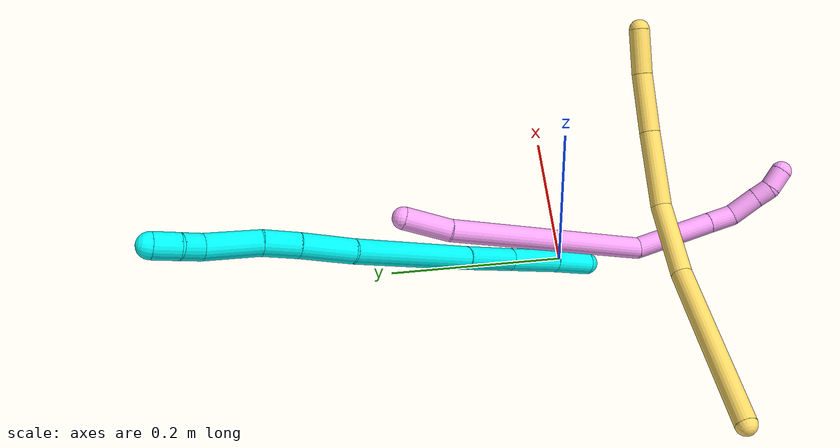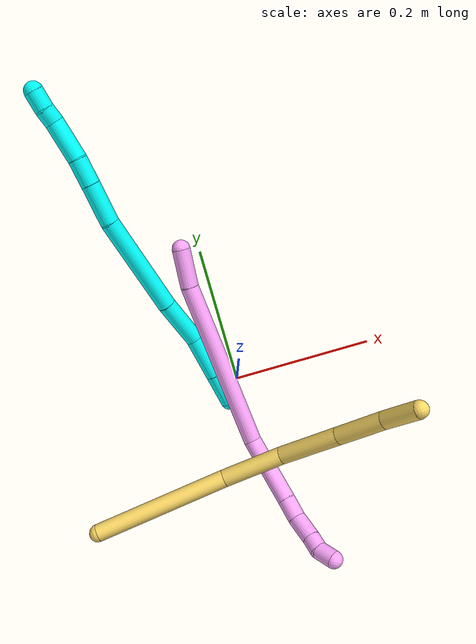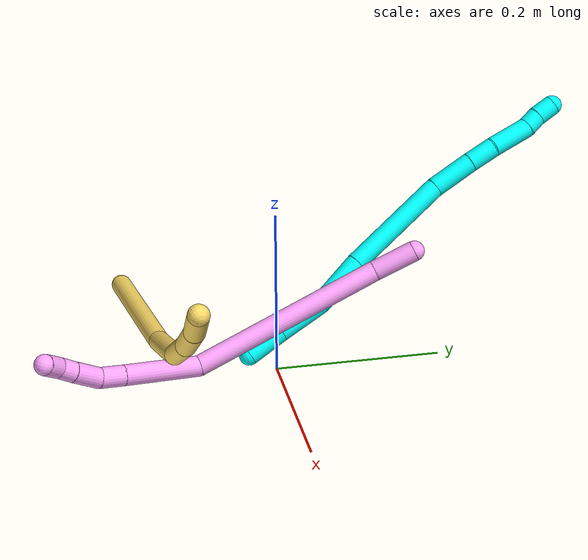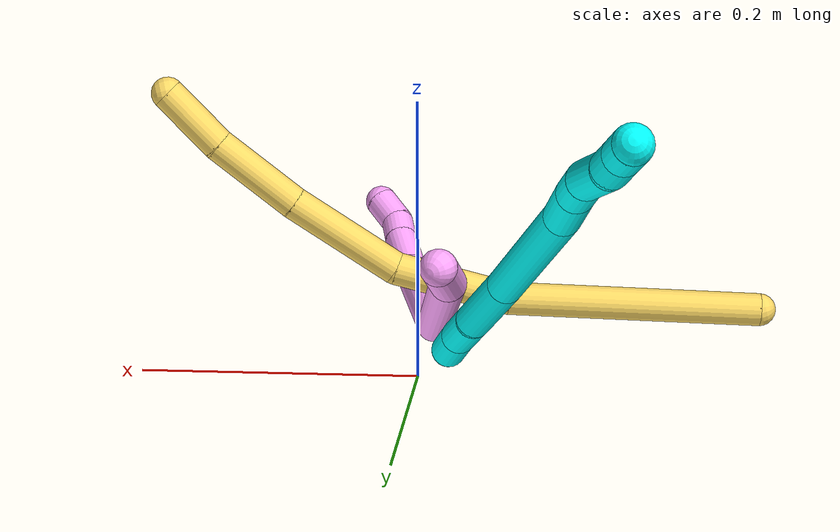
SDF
<sdf version="1.7">
 <world name="default">
  <model name="photoneo_s_sensor">
   <static>1</static>
   <pose>0 0 2 1.57079 1.57079 3.14159</pose>
   <link name="link">
    <inertial><mass>0.1</mass></inertial>
    <sensor name="sensor" type="depth">
     <update_rate>30</update_rate>
     <camera>
      <horizontal_fov>1.22</horizontal_fov>
      <image><width>1920</width><height>1200</height><format>B8G8R8</format></image>
      <clip><near>0.1</near><far>4</far></clip>
      <depth_camera><output>points</output></depth_camera>
     </camera>
     <plugin name="camera_plugin" filename="libgazebo_ros_depth_camera.so">
      <baseline>0.2</baseline>
      <alwaysOn>1</alwaysOn>
      <updateRate>0.0</updateRate>
      <cameraName>camera_ir</cameraName>
      <imageTopicName>/camera/color/image_raw</imageTopicName>
      <cameraInfoTopicName>/camera/color/camera_info</cameraInfoTopicName>
      <depthImageTopicName>/camera/depth/image_raw</depthImageTopicName>
      <depthImageCameraInfoTopicName>/camera/depth/camera_info</depthImageCameraInfoTopicName>
      <pointCloudTopicName>/camera/depth/points</pointCloudTopicName>
      <frameName>fr_optical</frameName>
      <pointCloudCutoff>0.1</pointCloudCutoff>
      <pointCloudCutoffMax>2.0</pointCloudCutoffMax>
      <distortionK1>0</distortionK1>
      <distortionK2>0</distortionK2>
      <distortionK3>0</distortionK3>
      <distortionT1>0</distortionT1>
      <distortionT2>0</distortionT2>
      <CxPrime>0</CxPrime>
      <Cx>0</Cx>
      <Cy>0</Cy>
      <focalLength>0</focalLength>
      <hackBaseline>0</hackBaseline>
     </plugin>
    </sensor>
   </link>
  </model>
  <model name="bin">
   <static>1</static>
   <link name="bottom">
    <collision name="collision-bottom">
     <pose>0 0 -0.01 0 -0 0</pose>
     <geometry><box><size>0.8 0.6 0.02</size></box></geometry>
     <surface>
      <friction><ode><mu>100</mu><mu2>100</mu2></ode></friction>
      <contact><collide_bitmask>65535</collide_bitmask></contact>
     </surface>
    </collision>
   </link>
   <link name="west_wall">
    <collision name="collision-west_wall">
     <pose>-0.41 0 0.1 0 -0 0</pose>
     <geometry><box><size>0.02 0.6 0.2</size></box></geometry>
     <surface>
      <friction><ode><mu>100</mu><mu2>100</mu2></ode></friction>
      <contact><collide_bitmask>65535</collide_bitmask></contact>
     </surface>
    </collision>
   </link>
   <link name="east_wall">
    <collision name="collision-east_wall">
     <pose>0.41 0 0.1 0 -0 0</pose>
     <geometry><box><size>0.02 0.6 0.2</size></box></geometry>
     <surface>
      <friction><ode><mu>100</mu><mu2>100</mu2></ode></friction>
      <contact><collide_bitmask>65535</collide_bitmask></contact>
     </surface>
    </collision>
   </link>
   <link name="south_wall">
    <collision name="collision-south_wall">
     <pose>0 -0.31 0.1 0 -0 0</pose>
     <geometry><box><size>0.8 0.02 0.2</size></box></geometry>
     <surface>
      <friction><ode><mu>100</mu><mu2>100</mu2></ode></friction>
      <contact><collide_bitmask>65535</collide_bitmask></contact>
     </surface>
    </collision>
   </link>
   <link name="north_wall">
    <collision name="collision-north_wall">
     <pose>0 0.31 0.1 0 -0 0</pose>
     <geometry><box><size>0.8 0.02 0.2</size></box></geometry>
     <surface>
      <friction><ode><mu>100</mu><mu2>100</mu2></ode></friction>
      <contact><collide_bitmask>65535</collide_bitmask></contact>
     </surface>
    </collision>
   </link>
  </model>
  <model name="3">
   <static>0</static>
   <link name="3">
    <collision name="collision-cylinder-e_1_1_4">
     <pose>-0.000596 0.003073 0.023415 -0.130496 -0.025215 0.001648</pose>
     <geometry><cylinder><radius>0.0125</radius><length>0.047246</length></cylinder></geometry>
     <surface>
      <friction><ode><mu>1.16</mu><mu2>1.16</mu2><slip1>0</slip1><slip2>0</slip2></ode></friction>
      <contact><ode><kp>1e+06</kp><kd>1</kd><max_vel>0</max_vel><min_depth>0.001</min_depth></ode></contact>
     </surface>
    </collision>
    <visual name="visual-cylinder-e_1_1_4">
     <pose>-0.000596 0.003073 0.023415 -0.130496 -0.025215 0.001648</pose>
     <geometry><cylinder><radius>0.0125</radius><length>0.047246</length></cylinder></geometry>
     <material><ambient>0.003922 1 0.996078 1</ambient></material>
    </visual>
    <collision name="collision-cylinder-e_2_4_5">
     <pose>-0.000746 0.009851 0.07711 -0.121752 0.014596 -0.00089</pose>
     <geometry><cylinder><radius>0.0125</radius><length>0.06102</length></cylinder></geometry>
     <surface>
      <friction><ode><mu>1.16</mu><mu2>1.16</mu2><slip1>0</slip1><slip2>0</slip2></ode></friction>
      <contact><ode><kp>1e+06</kp><kd>1</kd><max_vel>0</max_vel><min_depth>0.001</min_depth></ode></contact>
     </surface>
    </collision>
    <visual name="visual-cylinder-e_2_4_5">
     <pose>-0.000746 0.009851 0.07711 -0.121752 0.014596 -0.00089</pose>
     <geometry><cylinder><radius>0.0125</radius><length>0.06102</length></cylinder></geometry>
     <material><ambient>0.003922 1 0.996078 1</ambient></material>
    </visual>
    <collision name="collision-cylinder-e_3_5_6">
     <pose>-0.003994 0.024236 0.138868 -0.327096 -0.110652 0.018278</pose>
     <geometry><cylinder><radius>0.0125</radius><length>0.066889</length></cylinder></geometry>
     <surface>
      <friction><ode><mu>1.16</mu><mu2>1.16</mu2><slip1>0</slip1><slip2>0</slip2></ode></friction>
      <contact><ode><kp>1e+06</kp><kd>1</kd><max_vel>0</max_vel><min_depth>0.001</min_depth></ode></contact>
     </surface>
    </collision>
    <visual name="visual-cylinder-e_3_5_6">
     <pose>-0.003994 0.024236 0.138868 -0.327096 -0.110652 0.018278</pose>
     <geometry><cylinder><radius>0.0125</radius><length>0.066889</length></cylinder></geometry>
     <material><ambient>0.003922 1 0.996078 1</ambient></material>
    </visual>
    <collision name="collision-cylinder-e_4_6_7">
     <pose>-0.013207 0.051167 0.236986 -0.239192 -0.0803 0.009655</pose>
     <geometry><cylinder><radius>0.0125</radius><length>0.13763</length></cylinder></geometry>
     <surface>
      <friction><ode><mu>1.16</mu><mu2>1.16</mu2><slip1>0</slip1><slip2>0</slip2></ode></friction>
      <contact><ode><kp>1e+06</kp><kd>1</kd><max_vel>0</max_vel><min_depth>0.001</min_depth></ode></contact>
     </surface>
    </collision>
    <visual name="visual-cylinder-e_4_6_7">
     <pose>-0.013207 0.051167 0.236986 -0.239192 -0.0803 0.009655</pose>
     <geometry><cylinder><radius>0.0125</radius><length>0.13763</length></cylinder></geometry>
     <material><ambient>0.003922 1 0.996078 1</ambient></material>
    </visual>
    <collision name="collision-cylinder-e_5_7_8">
     <pose>-0.019777 0.069706 0.330764 -0.084118 -0.038562 0.001623</pose>
     <geometry><cylinder><radius>0.0125</radius><length>0.054508</length></cylinder></geometry>
     <surface>
      <friction><ode><mu>1.16</mu><mu2>1.16</mu2><slip1>0</slip1><slip2>0</slip2></ode></friction>
      <contact><ode><kp>1e+06</kp><kd>1</kd><max_vel>0</max_vel><min_depth>0.001</min_depth></ode></contact>
     </surface>
    </collision>
    <visual name="visual-cylinder-e_5_7_8">
     <pose>-0.019777 0.069706 0.330764 -0.084118 -0.038562 0.001623</pose>
     <geometry><cylinder><radius>0.0125</radius><length>0.054508</length></cylinder></geometry>
     <material><ambient>0.003922 1 0.996078 1</ambient></material>
    </visual>
    <collision name="collision-cylinder-e_6_8_9">
     <pose>-0.020743 0.073455 0.37549 -0.082897 0.00484 -0.000201</pose>
     <geometry><cylinder><radius>0.0125</radius><length>0.035299</length></cylinder></geometry>
     <surface>
      <friction><ode><mu>1.16</mu><mu2>1.16</mu2><slip1>0</slip1><slip2>0</slip2></ode></friction>
      <contact><ode><kp>1e+06</kp><kd>1</kd><max_vel>0</max_vel><min_depth>0.001</min_depth></ode></contact>
     </surface>
    </collision>
    <visual name="visual-cylinder-e_6_8_9">
     <pose>-0.020743 0.073455 0.37549 -0.082897 0.00484 -0.000201</pose>
     <geometry><cylinder><radius>0.0125</radius><length>0.035299</length></cylinder></geometry>
     <material><ambient>0.003922 1 0.996078 1</ambient></material>
    </visual>
    <collision name="collision-cylinder-e_7_9_10">
     <pose>-0.017028 0.078424 0.418913 -0.134918 0.138325 -0.00936</pose>
     <geometry><cylinder><radius>0.0125</radius><length>0.052645</length></cylinder></geometry>
     <surface>
      <friction><ode><mu>1.16</mu><mu2>1.16</mu2><slip1>0</slip1><slip2>0</slip2></ode></friction>
      <contact><ode><kp>1e+06</kp><kd>1</kd><max_vel>0</max_vel><min_depth>0.001</min_depth></ode></contact>
     </surface>
    </collision>
    <visual name="visual-cylinder-e_7_9_10">
     <pose>-0.017028 0.078424 0.418913 -0.134918 0.138325 -0.00936</pose>
     <geometry><cylinder><radius>0.0125</radius><length>0.052645</length></cylinder></geometry>
     <material><ambient>0.003922 1 0.996078 1</ambient></material>
    </visual>
    <collision name="collision-cylinder-e_8_10_11">
     <pose>-0.014294 0.084917 0.454368 -0.300986 -0.088682 0.013456</pose>
     <geometry><cylinder><radius>0.0125</radius><length>0.020225</length></cylinder></geometry>
     <surface>
      <friction><ode><mu>1.16</mu><mu2>1.16</mu2><slip1>0</slip1><slip2>0</slip2></ode></friction>
      <contact><ode><kp>1e+06</kp><kd>1</kd><max_vel>0</max_vel><min_depth>0.001</min_depth></ode></contact>
     </surface>
    </collision>
    <visual name="visual-cylinder-e_8_10_11">
     <pose>-0.014294 0.084917 0.454368 -0.300986 -0.088682 0.013456</pose>
     <geometry><cylinder><radius>0.0125</radius><length>0.020225</length></cylinder></geometry>
     <material><ambient>0.003922 1 0.996078 1</ambient></material>
    </visual>
    <collision name="collision-cylinder-e_9_11_2">
     <pose>-0.01517 0.089728 0.47612 -0.149333 0.001622 -0.000121</pose>
     <geometry><cylinder><radius>0.0125</radius><length>0.024538</length></cylinder></geometry>
     <surface>
      <friction><ode><mu>1.16</mu><mu2>1.16</mu2><slip1>0</slip1><slip2>0</slip2></ode></friction>
      <contact><ode><kp>1e+06</kp><kd>1</kd><max_vel>0</max_vel><min_depth>0.001</min_depth></ode></contact>
     </surface>
    </collision>
    <visual name="visual-cylinder-e_9_11_2">
     <pose>-0.01517 0.089728 0.47612 -0.149333 0.001622 -0.000121</pose>
     <geometry><cylinder><radius>0.0125</radius><length>0.024538</length></cylinder></geometry>
     <material><ambient>0.003922 1 0.996078 1</ambient></material>
    </visual>
    <collision name="collision-sphere-2">
     <pose>-0.01515 0.091554 0.488252 0 -0 0</pose>
     <geometry><sphere><radius>0.0125</radius></sphere></geometry>
     <surface>
      <friction><ode><mu>1.16</mu><mu2>1.16</mu2><slip1>0</slip1><slip2>0</slip2></ode></friction>
      <contact><ode><kp>1e+06</kp><kd>1</kd><max_vel>0</max_vel><min_depth>0.001</min_depth></ode></contact>
     </surface>
    </collision>
    <visual name="visual-sphere-2">
     <pose>-0.01515 0.091554 0.488252 0 -0 0</pose>
     <geometry><sphere><radius>0.0125</radius></sphere></geometry>
     <material><ambient>0.003922 1 0.996078 1</ambient></material>
    </visual>
    <collision name="collision-sphere-11">
     <pose>-0.01519 0.087903 0.463988 0 -0 0</pose>
     <geometry><sphere><radius>0.0125</radius></sphere></geometry>
     <surface>
      <friction><ode><mu>1.16</mu><mu2>1.16</mu2><slip1>0</slip1><slip2>0</slip2></ode></friction>
      <contact><ode><kp>1e+06</kp><kd>1</kd><max_vel>0</max_vel><min_depth>0.001</min_depth></ode></contact>
     </surface>
    </collision>
    <visual name="visual-sphere-11">
     <pose>-0.01519 0.087903 0.463988 0 -0 0</pose>
     <geometry><sphere><radius>0.0125</radius></sphere></geometry>
     <material><ambient>0.003922 1 0.996078 1</ambient></material>
    </visual>
    <collision name="collision-sphere-10">
     <pose>-0.013398 0.08193 0.444747 0 -0 0</pose>
     <geometry><sphere><radius>0.0125</radius></sphere></geometry>
     <surface>
      <friction><ode><mu>1.16</mu><mu2>1.16</mu2><slip1>0</slip1><slip2>0</slip2></ode></friction>
      <contact><ode><kp>1e+06</kp><kd>1</kd><max_vel>0</max_vel><min_depth>0.001</min_depth></ode></contact>
     </surface>
    </collision>
    <visual name="visual-sphere-10">
     <pose>-0.013398 0.08193 0.444747 0 -0 0</pose>
     <geometry><sphere><radius>0.0125</radius></sphere></geometry>
     <material><ambient>0.003922 1 0.996078 1</ambient></material>
    </visual>
    <collision name="collision-sphere-9">
     <pose>-0.020657 0.074917 0.393079 0 -0 0</pose>
     <geometry><sphere><radius>0.0125</radius></sphere></geometry>
     <surface>
      <friction><ode><mu>1.16</mu><mu2>1.16</mu2><slip1>0</slip1><slip2>0</slip2></ode></friction>
      <contact><ode><kp>1e+06</kp><kd>1</kd><max_vel>0</max_vel><min_depth>0.001</min_depth></ode></contact>
     </surface>
    </collision>
    <visual name="visual-sphere-9">
     <pose>-0.020657 0.074917 0.393079 0 -0 0</pose>
     <geometry><sphere><radius>0.0125</radius></sphere></geometry>
     <material><ambient>0.003922 1 0.996078 1</ambient></material>
    </visual>
    <collision name="collision-sphere-4">
     <pose>-0.001191 0.006146 0.046829 0 -0 0</pose>
     <geometry><sphere><radius>0.0125</radius></sphere></geometry>
     <surface>
      <friction><ode><mu>1.16</mu><mu2>1.16</mu2><slip1>0</slip1><slip2>0</slip2></ode></friction>
      <contact><ode><kp>1e+06</kp><kd>1</kd><max_vel>0</max_vel><min_depth>0.001</min_depth></ode></contact>
     </surface>
    </collision>
    <visual name="visual-sphere-4">
     <pose>-0.001191 0.006146 0.046829 0 -0 0</pose>
     <geometry><sphere><radius>0.0125</radius></sphere></geometry>
     <material><ambient>0.003922 1 0.996078 1</ambient></material>
    </visual>
    <collision name="collision-sphere-1">
     <geometry><sphere><radius>0.0125</radius></sphere></geometry>
     <surface>
      <friction><ode><mu>1.16</mu><mu2>1.16</mu2><slip1>0</slip1><slip2>0</slip2></ode></friction>
      <contact><ode><kp>1e+06</kp><kd>1</kd><max_vel>0</max_vel><min_depth>0.001</min_depth></ode></contact>
     </surface>
    </collision>
    <visual name="visual-sphere-1">
     <geometry><sphere><radius>0.0125</radius></sphere></geometry>
     <material><ambient>0.003922 1 0.996078 1</ambient></material>
    </visual>
    <collision name="collision-sphere-8">
     <pose>-0.020828 0.071994 0.357902 0 -0 0</pose>
     <geometry><sphere><radius>0.0125</radius></sphere></geometry>
     <surface>
      <friction><ode><mu>1.16</mu><mu2>1.16</mu2><slip1>0</slip1><slip2>0</slip2></ode></friction>
      <contact><ode><kp>1e+06</kp><kd>1</kd><max_vel>0</max_vel><min_depth>0.001</min_depth></ode></contact>
     </surface>
    </collision>
    <visual name="visual-sphere-8">
     <pose>-0.020828 0.071994 0.357902 0 -0 0</pose>
     <geometry><sphere><radius>0.0125</radius></sphere></geometry>
     <material><ambient>0.003922 1 0.996078 1</ambient></material>
    </visual>
    <collision name="collision-sphere-5">
     <pose>-0.000301 0.013556 0.107391 0 -0 0</pose>
     <geometry><sphere><radius>0.0125</radius></sphere></geometry>
     <surface>
      <friction><ode><mu>1.16</mu><mu2>1.16</mu2><slip1>0</slip1><slip2>0</slip2></ode></friction>
      <contact><ode><kp>1e+06</kp><kd>1</kd><max_vel>0</max_vel><min_depth>0.001</min_depth></ode></contact>
     </surface>
    </collision>
    <visual name="visual-sphere-5">
     <pose>-0.000301 0.013556 0.107391 0 -0 0</pose>
     <geometry><sphere><radius>0.0125</radius></sphere></geometry>
     <material><ambient>0.003922 1 0.996078 1</ambient></material>
    </visual>
    <collision name="collision-sphere-6">
     <pose>-0.007687 0.034916 0.170345 0 -0 0</pose>
     <geometry><sphere><radius>0.0125</radius></sphere></geometry>
     <surface>
      <friction><ode><mu>1.16</mu><mu2>1.16</mu2><slip1>0</slip1><slip2>0</slip2></ode></friction>
      <contact><ode><kp>1e+06</kp><kd>1</kd><max_vel>0</max_vel><min_depth>0.001</min_depth></ode></contact>
     </surface>
    </collision>
    <visual name="visual-sphere-6">
     <pose>-0.007687 0.034916 0.170345 0 -0 0</pose>
     <geometry><sphere><radius>0.0125</radius></sphere></geometry>
     <material><ambient>0.003922 1 0.996078 1</ambient></material>
    </visual>
    <collision name="collision-sphere-7">
     <pose>-0.018727 0.067418 0.303626 0 -0 0</pose>
     <geometry><sphere><radius>0.0125</radius></sphere></geometry>
     <surface>
      <friction><ode><mu>1.16</mu><mu2>1.16</mu2><slip1>0</slip1><slip2>0</slip2></ode></friction>
      <contact><ode><kp>1e+06</kp><kd>1</kd><max_vel>0</max_vel><min_depth>0.001</min_depth></ode></contact>
     </surface>
    </collision>
    <visual name="visual-sphere-7">
     <pose>-0.018727 0.067418 0.303626 0 -0 0</pose>
     <geometry><sphere><radius>0.0125</radius></sphere></geometry>
     <material><ambient>0.003922 1 0.996078 1</ambient></material>
    </visual>
    <inertial>
     <pose>-0.011053 0.047699 0.243854 0 -0 0</pose>
     <mass>0.5</mass>
     <inertia>
      <ixx>0.000321</ixx>
      <ixy>0</ixy>
      <ixz>0</ixz>
      <iyy>0.000322</iyy>
      <iyz>0</iyz>
      <izz>-1.2e-05</izz>
     </inertia>
    </inertial>
   </link>
   <pose>-0.019945 -0.029446 0.011494 0.549689 1.05844 2.30162</pose>
  </model>
  <model name="4">
   <static>0</static>
   <link name="4">
    <collision name="collision-cylinder-e_1_1_4">
     <pose>0.015998 0.006719 -0.020377 -2.82308 0.6407 -2.23988</pose>
     <geometry><cylinder><radius>0.0125</radius><length>0.053527</length></cylinder></geometry>
     <surface>
      <friction><ode><mu>1.16</mu><mu2>1.16</mu2><slip1>0</slip1><slip2>0</slip2></ode></friction>
      <contact><ode><kp>1e+06</kp><kd>1</kd><max_vel>0</max_vel><min_depth>0.001</min_depth></ode></contact>
     </surface>
    </collision>
    <visual name="visual-cylinder-e_1_1_4">
     <pose>0.015998 0.006719 -0.020377 -2.82308 0.6407 -2.23988</pose>
     <geometry><cylinder><radius>0.0125</radius><length>0.053527</length></cylinder></geometry>
     <material><ambient>1 0.65098 0.996078 1</ambient></material>
    </visual>
    <collision name="collision-cylinder-e_2_4_5">
     <pose>0.115578 0.027994 -0.125849 -2.97218 0.76921 -2.72804</pose>
     <geometry><cylinder><radius>0.0125</radius><length>0.240325</length></cylinder></geometry>
     <surface>
      <friction><ode><mu>1.16</mu><mu2>1.16</mu2><slip1>0</slip1><slip2>0</slip2></ode></friction>
      <contact><ode><kp>1e+06</kp><kd>1</kd><max_vel>0</max_vel><min_depth>0.001</min_depth></ode></contact>
     </surface>
    </collision>
    <visual name="visual-cylinder-e_2_4_5">
     <pose>0.115578 0.027994 -0.125849 -2.97218 0.76921 -2.72804</pose>
     <geometry><cylinder><radius>0.0125</radius><length>0.240325</length></cylinder></geometry>
     <material><ambient>1 0.65098 0.996078 1</ambient></material>
    </visual>
    <collision name="collision-cylinder-e_3_5_6">
     <pose>0.225351 0.026105 -0.247034 2.71403 0.583692 1.89008</pose>
     <geometry><cylinder><radius>0.0125</radius><length>0.095054</length></cylinder></geometry>
     <surface>
      <friction><ode><mu>1.16</mu><mu2>1.16</mu2><slip1>0</slip1><slip2>0</slip2></ode></friction>
      <contact><ode><kp>1e+06</kp><kd>1</kd><max_vel>0</max_vel><min_depth>0.001</min_depth></ode></contact>
     </surface>
    </collision>
    <visual name="visual-cylinder-e_3_5_6">
     <pose>0.225351 0.026105 -0.247034 2.71403 0.583692 1.89008</pose>
     <geometry><cylinder><radius>0.0125</radius><length>0.095054</length></cylinder></geometry>
     <material><ambient>1 0.65098 0.996078 1</ambient></material>
    </visual>
    <collision name="collision-cylinder-e_4_6_7">
     <pose>0.259605 0.00444 -0.294726 2.71884 0.564688 1.86784</pose>
     <geometry><cylinder><radius>0.0125</radius><length>0.030126</length></cylinder></geometry>
     <surface>
      <friction><ode><mu>1.16</mu><mu2>1.16</mu2><slip1>0</slip1><slip2>0</slip2></ode></friction>
      <contact><ode><kp>1e+06</kp><kd>1</kd><max_vel>0</max_vel><min_depth>0.001</min_depth></ode></contact>
     </surface>
    </collision>
    <visual name="visual-cylinder-e_4_6_7">
     <pose>0.259605 0.00444 -0.294726 2.71884 0.564688 1.86784</pose>
     <geometry><cylinder><radius>0.0125</radius><length>0.030126</length></cylinder></geometry>
     <material><ambient>1 0.65098 0.996078 1</ambient></material>
    </visual>
    <collision name="collision-cylinder-e_5_7_8">
     <pose>0.273644 -0.012577 -0.318191 2.35888 0.343218 0.795276</pose>
     <geometry><cylinder><radius>0.0125</radius><length>0.035529</length></cylinder></geometry>
     <surface>
      <friction><ode><mu>1.16</mu><mu2>1.16</mu2><slip1>0</slip1><slip2>0</slip2></ode></friction>
      <contact><ode><kp>1e+06</kp><kd>1</kd><max_vel>0</max_vel><min_depth>0.001</min_depth></ode></contact>
     </surface>
    </collision>
    <visual name="visual-cylinder-e_5_7_8">
     <pose>0.273644 -0.012577 -0.318191 2.35888 0.343218 0.795276</pose>
     <geometry><cylinder><radius>0.0125</radius><length>0.035529</length></cylinder></geometry>
     <material><ambient>1 0.65098 0.996078 1</ambient></material>
    </visual>
    <collision name="collision-cylinder-e_6_8_9">
     <pose>0.282487 -0.030917 -0.337265 2.40489 0.286102 0.714351</pose>
     <geometry><cylinder><radius>0.0125</radius><length>0.020304</length></cylinder></geometry>
     <surface>
      <friction><ode><mu>1.16</mu><mu2>1.16</mu2><slip1>0</slip1><slip2>0</slip2></ode></friction>
      <contact><ode><kp>1e+06</kp><kd>1</kd><max_vel>0</max_vel><min_depth>0.001</min_depth></ode></contact>
     </surface>
    </collision>
    <visual name="visual-cylinder-e_6_8_9">
     <pose>0.282487 -0.030917 -0.337265 2.40489 0.286102 0.714351</pose>
     <geometry><cylinder><radius>0.0125</radius><length>0.020304</length></cylinder></geometry>
     <material><ambient>1 0.65098 0.996078 1</ambient></material>
    </visual>
    <collision name="collision-cylinder-e_7_9_2">
     <pose>0.290732 -0.047865 -0.349034 1.98348 0.442357 0.662482</pose>
     <geometry><cylinder><radius>0.0125</radius><length>0.025135</length></cylinder></geometry>
     <surface>
      <friction><ode><mu>1.16</mu><mu2>1.16</mu2><slip1>0</slip1><slip2>0</slip2></ode></friction>
      <contact><ode><kp>1e+06</kp><kd>1</kd><max_vel>0</max_vel><min_depth>0.001</min_depth></ode></contact>
     </surface>
    </collision>
    <visual name="visual-cylinder-e_7_9_2">
     <pose>0.290732 -0.047865 -0.349034 1.98348 0.442357 0.662482</pose>
     <geometry><cylinder><radius>0.0125</radius><length>0.025135</length></cylinder></geometry>
     <material><ambient>1 0.65098 0.996078 1</ambient></material>
    </visual>
    <collision name="collision-sphere-2">
     <pose>0.296112 -0.058269 -0.353589 0 -0 0</pose>
     <geometry><sphere><radius>0.0125</radius></sphere></geometry>
     <surface>
      <friction><ode><mu>1.16</mu><mu2>1.16</mu2><slip1>0</slip1><slip2>0</slip2></ode></friction>
      <contact><ode><kp>1e+06</kp><kd>1</kd><max_vel>0</max_vel><min_depth>0.001</min_depth></ode></contact>
     </surface>
    </collision>
    <visual name="visual-sphere-2">
     <pose>0.296112 -0.058269 -0.353589 0 -0 0</pose>
     <geometry><sphere><radius>0.0125</radius></sphere></geometry>
     <material><ambient>1 0.65098 0.996078 1</ambient></material>
    </visual>
    <collision name="collision-sphere-9">
     <pose>0.285352 -0.03746 -0.344479 0 -0 0</pose>
     <geometry><sphere><radius>0.0125</radius></sphere></geometry>
     <surface>
      <friction><ode><mu>1.16</mu><mu2>1.16</mu2><slip1>0</slip1><slip2>0</slip2></ode></friction>
      <contact><ode><kp>1e+06</kp><kd>1</kd><max_vel>0</max_vel><min_depth>0.001</min_depth></ode></contact>
     </surface>
    </collision>
    <visual name="visual-sphere-9">
     <pose>0.285352 -0.03746 -0.344479 0 -0 0</pose>
     <geometry><sphere><radius>0.0125</radius></sphere></geometry>
     <material><ambient>1 0.65098 0.996078 1</ambient></material>
    </visual>
    <collision name="collision-sphere-4">
     <pose>0.031996 0.013438 -0.040753 0 -0 0</pose>
     <geometry><sphere><radius>0.0125</radius></sphere></geometry>
     <surface>
      <friction><ode><mu>1.16</mu><mu2>1.16</mu2><slip1>0</slip1><slip2>0</slip2></ode></friction>
      <contact><ode><kp>1e+06</kp><kd>1</kd><max_vel>0</max_vel><min_depth>0.001</min_depth></ode></contact>
     </surface>
    </collision>
    <visual name="visual-sphere-4">
     <pose>0.031996 0.013438 -0.040753 0 -0 0</pose>
     <geometry><sphere><radius>0.0125</radius></sphere></geometry>
     <material><ambient>1 0.65098 0.996078 1</ambient></material>
    </visual>
    <collision name="collision-sphere-1">
     <geometry><sphere><radius>0.0125</radius></sphere></geometry>
     <surface>
      <friction><ode><mu>1.16</mu><mu2>1.16</mu2><slip1>0</slip1><slip2>0</slip2></ode></friction>
      <contact><ode><kp>1e+06</kp><kd>1</kd><max_vel>0</max_vel><min_depth>0.001</min_depth></ode></contact>
     </surface>
    </collision>
    <visual name="visual-sphere-1">
     <geometry><sphere><radius>0.0125</radius></sphere></geometry>
     <material><ambient>1 0.65098 0.996078 1</ambient></material>
    </visual>
    <collision name="collision-sphere-8">
     <pose>0.279622 -0.024374 -0.330051 0 -0 0</pose>
     <geometry><sphere><radius>0.0125</radius></sphere></geometry>
     <surface>
      <friction><ode><mu>1.16</mu><mu2>1.16</mu2><slip1>0</slip1><slip2>0</slip2></ode></friction>
      <contact><ode><kp>1e+06</kp><kd>1</kd><max_vel>0</max_vel><min_depth>0.001</min_depth></ode></contact>
     </surface>
    </collision>
    <visual name="visual-sphere-8">
     <pose>0.279622 -0.024374 -0.330051 0 -0 0</pose>
     <geometry><sphere><radius>0.0125</radius></sphere></geometry>
     <material><ambient>1 0.65098 0.996078 1</ambient></material>
    </visual>
    <collision name="collision-sphere-5">
     <pose>0.199159 0.042549 -0.210946 0 -0 0</pose>
     <geometry><sphere><radius>0.0125</radius></sphere></geometry>
     <surface>
      <friction><ode><mu>1.16</mu><mu2>1.16</mu2><slip1>0</slip1><slip2>0</slip2></ode></friction>
      <contact><ode><kp>1e+06</kp><kd>1</kd><max_vel>0</max_vel><min_depth>0.001</min_depth></ode></contact>
     </surface>
    </collision>
    <visual name="visual-sphere-5">
     <pose>0.199159 0.042549 -0.210946 0 -0 0</pose>
     <geometry><sphere><radius>0.0125</radius></sphere></geometry>
     <material><ambient>1 0.65098 0.996078 1</ambient></material>
    </visual>
    <collision name="collision-sphere-6">
     <pose>0.251544 0.009661 -0.283122 0 -0 0</pose>
     <geometry><sphere><radius>0.0125</radius></sphere></geometry>
     <surface>
      <friction><ode><mu>1.16</mu><mu2>1.16</mu2><slip1>0</slip1><slip2>0</slip2></ode></friction>
      <contact><ode><kp>1e+06</kp><kd>1</kd><max_vel>0</max_vel><min_depth>0.001</min_depth></ode></contact>
     </surface>
    </collision>
    <visual name="visual-sphere-6">
     <pose>0.251544 0.009661 -0.283122 0 -0 0</pose>
     <geometry><sphere><radius>0.0125</radius></sphere></geometry>
     <material><ambient>1 0.65098 0.996078 1</ambient></material>
    </visual>
    <collision name="collision-sphere-7">
     <pose>0.267666 -0.00078 -0.30633 0 -0 0</pose>
     <geometry><sphere><radius>0.0125</radius></sphere></geometry>
     <surface>
      <friction><ode><mu>1.16</mu><mu2>1.16</mu2><slip1>0</slip1><slip2>0</slip2></ode></friction>
      <contact><ode><kp>1e+06</kp><kd>1</kd><max_vel>0</max_vel><min_depth>0.001</min_depth></ode></contact>
     </surface>
    </collision>
    <visual name="visual-sphere-7">
     <pose>0.267666 -0.00078 -0.30633 0 -0 0</pose>
     <geometry><sphere><radius>0.0125</radius></sphere></geometry>
     <material><ambient>1 0.65098 0.996078 1</ambient></material>
    </visual>
    <inertial>
     <pose>0.161279 0.014849 -0.181243 0 -0 0</pose>
     <mass>0.5</mass>
     <inertia>
      <ixx>-0.001044</ixx>
      <ixy>0</ixy>
      <ixz>0</ixz>
      <iyy>0.000873</iyy>
      <iyz>0</iyz>
      <izz>-0.001006</izz>
     </inertia>
    </inertial>
   </link>
   <pose>-0.029002 0.175744 0.125965 -1.72329 0.557021 -0.558182</pose>
  </model>
  <model name="5">
   <static>0</static>
   <link name="5">
    <collision name="collision-cylinder-e_1_1_4">
     <pose>0.027845 -0.002158 -0.092614 3.1183 0.29198 2.9835</pose>
     <geometry><cylinder><radius>0.0125</radius><length>0.193467</length></cylinder></geometry>
     <surface>
      <friction><ode><mu>1.16</mu><mu2>1.16</mu2><slip1>0</slip1><slip2>0</slip2></ode></friction>
      <contact><ode><kp>1e+06</kp><kd>1</kd><max_vel>0</max_vel><min_depth>0.001</min_depth></ode></contact>
     </surface>
    </collision>
    <visual name="visual-cylinder-e_1_1_4">
     <pose>0.027845 -0.002158 -0.092614 3.1183 0.29198 2.9835</pose>
     <geometry><cylinder><radius>0.0125</radius><length>0.193467</length></cylinder></geometry>
     <material><ambient>1 0.858824 0.4 1</ambient></material>
    </visual>
    <collision name="collision-cylinder-e_2_4_5">
     <pose>0.077197 -0.00615 -0.224 3.0943 0.505995 2.95913</pose>
     <geometry><cylinder><radius>0.0125</radius><length>0.088752</length></cylinder></geometry>
     <surface>
      <friction><ode><mu>1.16</mu><mu2>1.16</mu2><slip1>0</slip1><slip2>0</slip2></ode></friction>
      <contact><ode><kp>1e+06</kp><kd>1</kd><max_vel>0</max_vel><min_depth>0.001</min_depth></ode></contact>
     </surface>
    </collision>
    <visual name="visual-cylinder-e_2_4_5">
     <pose>0.077197 -0.00615 -0.224 3.0943 0.505995 2.95913</pose>
     <geometry><cylinder><radius>0.0125</radius><length>0.088752</length></cylinder></geometry>
     <material><ambient>1 0.858824 0.4 1</ambient></material>
    </visual>
    <collision name="collision-cylinder-e_3_5_6">
     <pose>0.132094 -0.011081 -0.294083 3.04306 0.815076 2.91416</pose>
     <geometry><cylinder><radius>0.0125</radius><length>0.091756</length></cylinder></geometry>
     <surface>
      <friction><ode><mu>1.16</mu><mu2>1.16</mu2><slip1>0</slip1><slip2>0</slip2></ode></friction>
      <contact><ode><kp>1e+06</kp><kd>1</kd><max_vel>0</max_vel><min_depth>0.001</min_depth></ode></contact>
     </surface>
    </collision>
    <visual name="visual-cylinder-e_3_5_6">
     <pose>0.132094 -0.011081 -0.294083 3.04306 0.815076 2.91416</pose>
     <geometry><cylinder><radius>0.0125</radius><length>0.091756</length></cylinder></geometry>
     <material><ambient>1 0.858824 0.4 1</ambient></material>
    </visual>
    <collision name="collision-cylinder-e_4_6_7">
     <pose>0.193624 -0.016334 -0.347542 3.04443 0.901711 2.94141</pose>
     <geometry><cylinder><radius>0.0125</radius><length>0.071751</length></cylinder></geometry>
     <surface>
      <friction><ode><mu>1.16</mu><mu2>1.16</mu2><slip1>0</slip1><slip2>0</slip2></ode></friction>
      <contact><ode><kp>1e+06</kp><kd>1</kd><max_vel>0</max_vel><min_depth>0.001</min_depth></ode></contact>
     </surface>
    </collision>
    <visual name="visual-cylinder-e_4_6_7">
     <pose>0.193624 -0.016334 -0.347542 3.04443 0.901711 2.94141</pose>
     <geometry><cylinder><radius>0.0125</radius><length>0.071751</length></cylinder></geometry>
     <material><ambient>1 0.858824 0.4 1</ambient></material>
    </visual>
    <collision name="collision-cylinder-e_5_7_2">
     <pose>0.245067 -0.020727 -0.383415 2.98022 1.03277 2.85866</pose>
     <geometry><cylinder><radius>0.0125</radius><length>0.054274</length></cylinder></geometry>
     <surface>
      <friction><ode><mu>1.16</mu><mu2>1.16</mu2><slip1>0</slip1><slip2>0</slip2></ode></friction>
      <contact><ode><kp>1e+06</kp><kd>1</kd><max_vel>0</max_vel><min_depth>0.001</min_depth></ode></contact>
     </surface>
    </collision>
    <visual name="visual-cylinder-e_5_7_2">
     <pose>0.245067 -0.020727 -0.383415 2.98022 1.03277 2.85866</pose>
     <geometry><cylinder><radius>0.0125</radius><length>0.054274</length></cylinder></geometry>
     <material><ambient>1 0.858824 0.4 1</ambient></material>
    </visual>
    <collision name="collision-sphere-2">
     <pose>0.268371 -0.022962 -0.39714 0 -0 0</pose>
     <geometry><sphere><radius>0.0125</radius></sphere></geometry>
     <surface>
      <friction><ode><mu>1.16</mu><mu2>1.16</mu2><slip1>0</slip1><slip2>0</slip2></ode></friction>
      <contact><ode><kp>1e+06</kp><kd>1</kd><max_vel>0</max_vel><min_depth>0.001</min_depth></ode></contact>
     </surface>
    </collision>
    <visual name="visual-sphere-2">
     <pose>0.268371 -0.022962 -0.39714 0 -0 0</pose>
     <geometry><sphere><radius>0.0125</radius></sphere></geometry>
     <material><ambient>1 0.858824 0.4 1</ambient></material>
    </visual>
    <collision name="collision-sphere-7">
     <pose>0.221764 -0.018493 -0.369689 0 -0 0</pose>
     <geometry><sphere><radius>0.0125</radius></sphere></geometry>
     <surface>
      <friction><ode><mu>1.16</mu><mu2>1.16</mu2><slip1>0</slip1><slip2>0</slip2></ode></friction>
      <contact><ode><kp>1e+06</kp><kd>1</kd><max_vel>0</max_vel><min_depth>0.001</min_depth></ode></contact>
     </surface>
    </collision>
    <visual name="visual-sphere-7">
     <pose>0.221764 -0.018493 -0.369689 0 -0 0</pose>
     <geometry><sphere><radius>0.0125</radius></sphere></geometry>
     <material><ambient>1 0.858824 0.4 1</ambient></material>
    </visual>
    <collision name="collision-sphere-6">
     <pose>0.165483 -0.014176 -0.325394 0 -0 0</pose>
     <geometry><sphere><radius>0.0125</radius></sphere></geometry>
     <surface>
      <friction><ode><mu>1.16</mu><mu2>1.16</mu2><slip1>0</slip1><slip2>0</slip2></ode></friction>
      <contact><ode><kp>1e+06</kp><kd>1</kd><max_vel>0</max_vel><min_depth>0.001</min_depth></ode></contact>
     </surface>
    </collision>
    <visual name="visual-sphere-6">
     <pose>0.165483 -0.014176 -0.325394 0 -0 0</pose>
     <geometry><sphere><radius>0.0125</radius></sphere></geometry>
     <material><ambient>1 0.858824 0.4 1</ambient></material>
    </visual>
    <collision name="collision-sphere-5">
     <pose>0.098705 -0.007986 -0.262772 0 -0 0</pose>
     <geometry><sphere><radius>0.0125</radius></sphere></geometry>
     <surface>
      <friction><ode><mu>1.16</mu><mu2>1.16</mu2><slip1>0</slip1><slip2>0</slip2></ode></friction>
      <contact><ode><kp>1e+06</kp><kd>1</kd><max_vel>0</max_vel><min_depth>0.001</min_depth></ode></contact>
     </surface>
    </collision>
    <visual name="visual-sphere-5">
     <pose>0.098705 -0.007986 -0.262772 0 -0 0</pose>
     <geometry><sphere><radius>0.0125</radius></sphere></geometry>
     <material><ambient>1 0.858824 0.4 1</ambient></material>
    </visual>
    <collision name="collision-sphere-1">
     <geometry><sphere><radius>0.0125</radius></sphere></geometry>
     <surface>
      <friction><ode><mu>1.16</mu><mu2>1.16</mu2><slip1>0</slip1><slip2>0</slip2></ode></friction>
      <contact><ode><kp>1e+06</kp><kd>1</kd><max_vel>0</max_vel><min_depth>0.001</min_depth></ode></contact>
     </surface>
    </collision>
    <visual name="visual-sphere-1">
     <geometry><sphere><radius>0.0125</radius></sphere></geometry>
     <material><ambient>1 0.858824 0.4 1</ambient></material>
    </visual>
    <collision name="collision-sphere-4">
     <pose>0.055689 -0.004315 -0.185228 0 -0 0</pose>
     <geometry><sphere><radius>0.0125</radius></sphere></geometry>
     <surface>
      <friction><ode><mu>1.16</mu><mu2>1.16</mu2><slip1>0</slip1><slip2>0</slip2></ode></friction>
      <contact><ode><kp>1e+06</kp><kd>1</kd><max_vel>0</max_vel><min_depth>0.001</min_depth></ode></contact>
     </surface>
    </collision>
    <visual name="visual-sphere-4">
     <pose>0.055689 -0.004315 -0.185228 0 -0 0</pose>
     <geometry><sphere><radius>0.0125</radius></sphere></geometry>
     <material><ambient>1 0.858824 0.4 1</ambient></material>
    </visual>
    <inertial>
     <pose>0.103105 -0.008554 -0.221056 0 -0 0</pose>
     <mass>0.5</mass>
     <inertia>
      <ixx>-0.000565</ixx>
      <ixy>0</ixy>
      <ixz>0</ixz>
      <iyy>0.000897</iyy>
      <iyz>0</iyz>
      <izz>-0.000302</izz>
     </inertia>
    </inertial>
   </link>
   <pose>-0.249131 -0.157349 0.011856 0.171744 -1.33532 -0.019533</pose>
  </model>
 </world>
</sdf>
